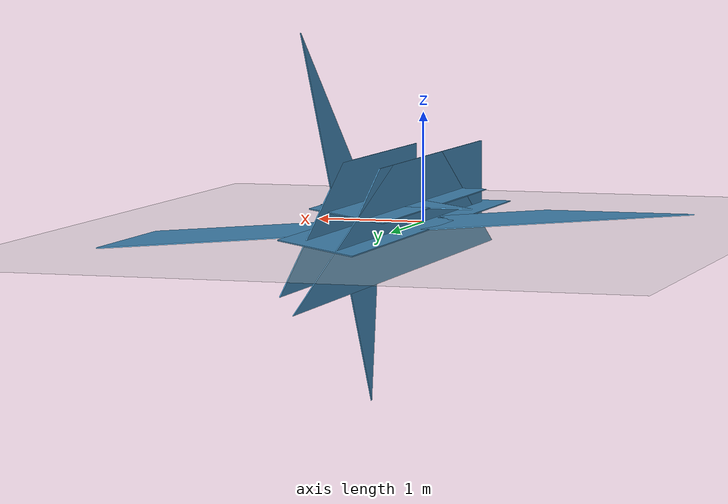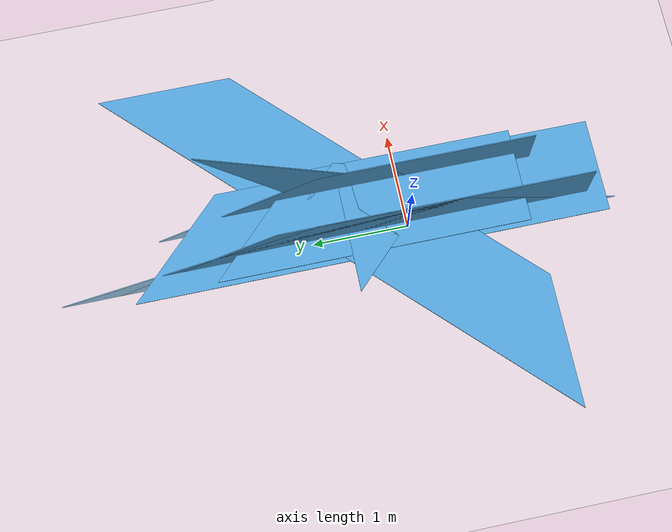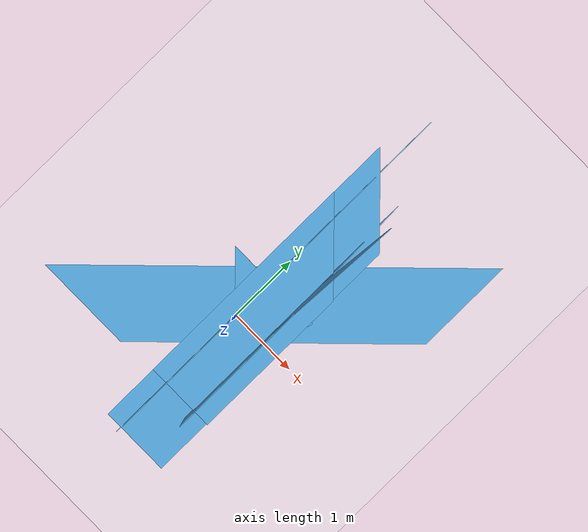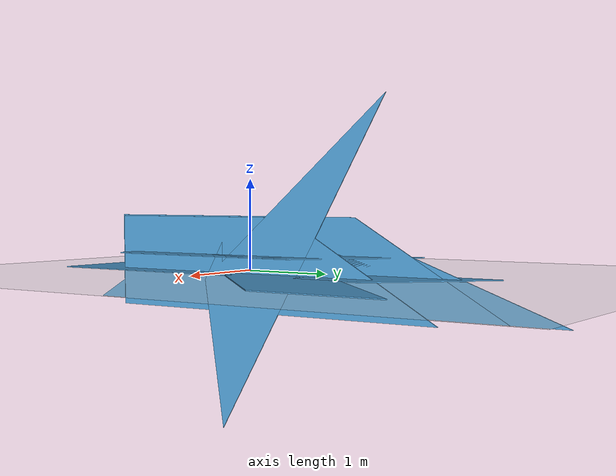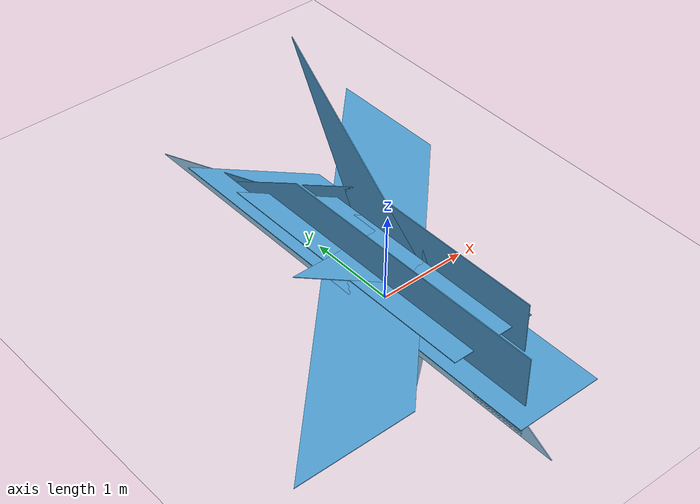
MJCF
<mujoco model="zipper_tube">
   <compiler meshdir = '../stls/'/>
<asset>
    <mesh name="panel_s0_f0" file="panel_s0_f0.stl"/>
    <mesh name="panel_s0_f1" file="panel_s0_f1.stl"/>
    <mesh name="panel_s0_f2" file="panel_s0_f2.stl"/>
    <mesh name="panel_s0_f3" file="panel_s0_f3.stl"/>
    <mesh name="panel_s1_f0" file="panel_s1_f0.stl"/>
    <mesh name="panel_s1_f1" file="panel_s1_f1.stl"/>
    <mesh name="panel_s1_f2" file="panel_s1_f2.stl"/>
    <mesh name="panel_s1_f3" file="panel_s1_f3.stl"/>
</asset>
  <option timestep="0.002000" gravity="0.000000 0.000000 -9.810000"/>
  <worldbody>
    <light pos="0 5 5" dir="0 -1 -1"/>
    <geom name="floor" type="plane" size="5.000000 5.000000 1.000000" rgba="0.9 0.9 0.9 1" contype="2" conaffinity="1"/>
    <body name="tube_root" pos="0 0 0">
      <body name="segment0_panel0" pos="0.250000 0.150000 0.000000" quat="1.000000 0.000000 -0.000000 -0.000000">
        <geom name="segment0_panel0_geom" type="mesh" mesh="panel_s0_f0" pos="0 0 0" quat="1 0 0 0" rgba="0.3 0.6 0.8 1" mass="1.000000" contype="1" conaffinity="2"/>
        <body name="segment0_panel1" pos="0.250000 0.000000 0.100000" quat="0.707107 0.000000 -0.707107 -0.000000">
          <joint name="segment0_hinge1" type="hinge" pos="-0.100000 -0.000000 0.000000" axis="-0.000000 1.000000 0.000000"/>
          <geom name="segment0_panel1_geom" type="mesh" mesh="panel_s0_f1" pos="0 0 0" quat="1 0 0 0" rgba="0.3 0.6 0.8 1" mass="1.000000" contype="1" conaffinity="2"/>
          <body name="segment0_panel2" pos="0.100000 0.000000 0.250000" quat="0.707107 0.000000 -0.707107 0.000000">
            <joint name="segment0_hinge2" type="hinge" pos="-0.250000 -0.000000 0.000000" axis="0.000000 1.000000 0.000000"/>
            <geom name="segment0_panel2_geom" type="mesh" mesh="panel_s0_f2" pos="0 0 0" quat="1 0 0 0" rgba="0.3 0.6 0.8 1" mass="1.000000" contype="1" conaffinity="2"/>
            <body name="segment0_panel3" pos="0.250000 0.000000 0.100000" quat="0.500000 0.500000 0.500000 0.500000">
              <joint name="segment0_hinge3" type="hinge" pos="0.000000 -0.100000 0.000000" axis="1.000000 0.000000 0.000000"/>
              <geom name="segment0_panel3_geom" type="mesh" mesh="panel_s0_f3" pos="0 0 0" quat="1 0 0 0" rgba="0.3 0.6 0.8 1" mass="1.000000" contype="1" conaffinity="2"/>
            </body>
          </body>
        </body>
      </body>

      <body name="segment1_panel0" pos="0.250000 0.450000 0.000000" quat="1.000000 0.000000 -0.000000 -0.000000">
        <geom name="segment1_panel0_geom" type="mesh" mesh="panel_s1_f0" pos="0 0 0" quat="1 0 0 0" rgba="0.3 0.6 0.8 1" mass="1.000000" contype="1" conaffinity="2"/>
        <body name="segment1_panel1" pos="0.250000 -0.000000 0.100000" quat="0.707107 -0.000000 -0.707107 0.000000">
          <joint name="segment1_hinge1" type="hinge" pos="-0.100000 0.000000 0.000000" axis="0.000000 1.000000 0.000000"/>
          <geom name="segment1_panel1_geom" type="mesh" mesh="panel_s1_f1" pos="0 0 0" quat="1 0 0 0" rgba="0.3 0.6 0.8 1" mass="1.000000" contype="1" conaffinity="2"/>
          <body name="segment1_panel2" pos="0.100000 0.000000 0.250000" quat="0.707107 -0.000000 -0.707107 0.000000">
            <joint name="segment1_hinge2" type="hinge" pos="-0.250000 0.000000 0.000000" axis="0.000000 1.000000 0.000000"/>
            <geom name="segment1_panel2_geom" type="mesh" mesh="panel_s1_f2" pos="0 0 0" quat="1 0 0 0" rgba="0.3 0.6 0.8 1" mass="1.000000" contype="1" conaffinity="2"/>
            <body name="segment1_panel3" pos="0.250000 0.000000 0.100000" quat="0.500000 0.500000 0.500000 0.500000">
              <joint name="segment1_hinge3" type="hinge" pos="-0.000000 -0.100000 -0.000000" axis="1.000000 0.000000 0.000000"/>
              <geom name="segment1_panel3_geom" type="mesh" mesh="panel_s1_f3" pos="0 0 0" quat="1 0 0 0" rgba="0.3 0.6 0.8 1" mass="1.000000" contype="1" conaffinity="2"/>
            </body>
          </body>
        </body>
      </body>

    </body>
  </worldbody>
  <equality>
    <connect name="segment0_close" body1="segment0_panel3" body2="segment0_panel0" anchor="0.000000 0.150000 0.000000"/>
    <connect name="segment1_close" body1="segment1_panel3" body2="segment1_panel0" anchor="0.000000 0.450000 0.000000"/>
    <connect name="segment0_to_1_panel0" body1="segment0_panel0" body2="segment1_panel0" anchor="0.250000 0.300000 0.000000"/>
    <connect name="segment0_to_1_panel1" body1="segment0_panel1" body2="segment1_panel1" anchor="0.500000 0.300000 0.100000"/>
    <connect name="segment0_to_1_panel2" body1="segment0_panel2" body2="segment1_panel2" anchor="0.250000 0.300000 0.200000"/>
    <connect name="segment0_to_1_panel3" body1="segment0_panel3" body2="segment1_panel3" anchor="0.000000 0.300000 0.100000"/>
  </equality>
</mujoco>
